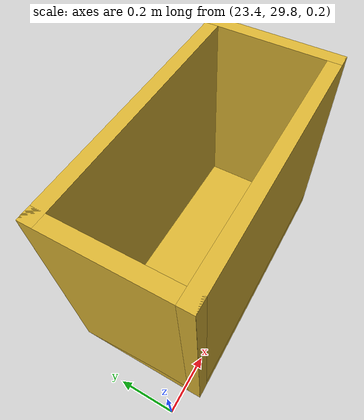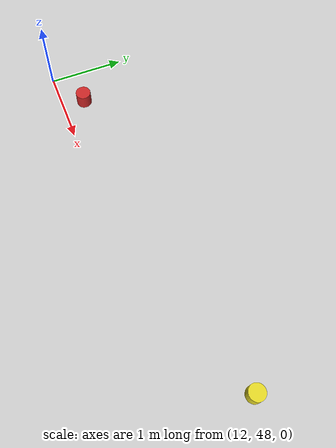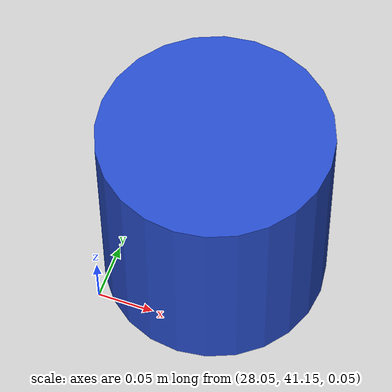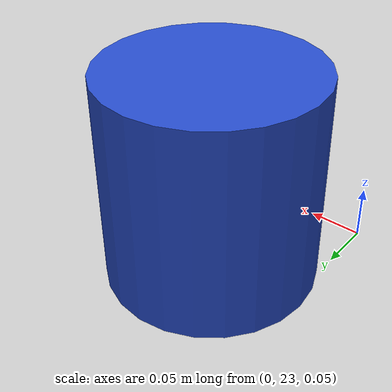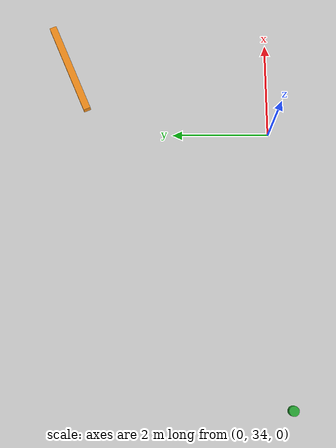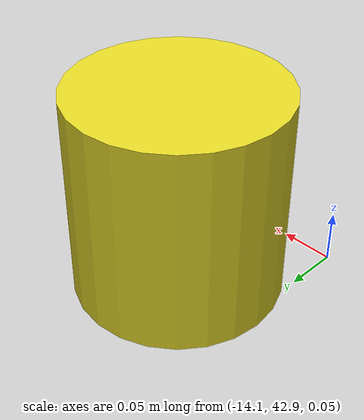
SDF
<sdf version="1.4">
 <world name="default">
  <include><uri>model://sun</uri></include>
  <include><uri>model://ground_plane</uri></include>
  <model name="static_object_1">
   <pose>22.52 15.2 0.05 0 0 0</pose>
   <include><uri>model://object_green_cylinder_mbzirc</uri></include>
  </model>
  <model name="static_object_2">
   <pose>-33.77 37.7 0.05 0 0 0</pose>
   <include><uri>model://object_green_cylinder_mbzirc</uri></include>
  </model>
  <model name="static_object_3">
   <pose>-16.82 11.22 0.05 0 0 0</pose>
   <include><uri>model://object_green_cylinder_mbzirc</uri></include>
  </model>
  <model name="static_object_4">
   <pose>-5.61 33.71 0.05 0 0 0</pose>
   <include><uri>model://object_green_cylinder_mbzirc</uri></include>
  </model>
  <model name="static_object_5">
   <pose>0.1 23.1 0.05 0 0 0</pose>
   <include><uri>model://object_blue_cylinder_mbzirc</uri></include>
  </model>
  <model name="static_object_6">
   <pose>-28.18 18.78 0.05 0 0 0</pose>
   <include><uri>model://object_blue_cylinder_mbzirc</uri></include>
  </model>
  <model name="static_object_7">
   <pose>28.13 41.23 0.05 0 0 0</pose>
   <include><uri>model://object_blue_cylinder_mbzirc</uri></include>
  </model>
  <model name="static_object_8">
   <pose>-36.57 28.17 0.05 0 0 0</pose>
   <include><uri>model://object_red_cylinder_mbzirc</uri></include>
  </model>
  <model name="static_object_9">
   <pose>11.26 7.6 0.05 0 0 0</pose>
   <include><uri>model://object_red_cylinder_mbzirc</uri></include>
  </model>
  <model name="static_object_10">
   <pose>12.53 48.3 0.05 0 0 0</pose>
   <include><uri>model://object_red_cylinder_mbzirc</uri></include>
  </model>
  <model name="big_object_1">
   <pose>1.48 38.18 0.05 0 0 0.39270</pose>
   <include><uri>model://object_big_mbzirc</uri></include>
  </model>
  <model name="big_object_2">
   <pose>39.30 13.70 0.05 0 0 1.76715</pose>
   <include><uri>model://object_big_mbzirc</uri></include>
  </model>
  <model name="big_object_3">
   <pose>-39.35 46.25 0.1 0 0 2.15985</pose>
   <include><uri>model://object_big_mbzirc</uri></include>
  </model>
  <model name="mobile_object_1">
   <pose>-1.24 8.7 0.05 0 0 0</pose>
   <include><uri>model://object_yellow_cylinder_mbzirc</uri></include>
  </model>
  <model name="mobile_object_2">
   <pose>16.89 48.79 0.05 0 0 0</pose>
   <include><uri>model://object_yellow_cylinder_mbzirc</uri></include>
  </model>
  <model name="mobile_object_3">
   <pose>5.64 26.24 0.05 0 0 0</pose>
   <include><uri>model://object_yellow_cylinder_mbzirc</uri></include>
  </model>
  <model name="mobile_object_4">
   <pose>33.75 52.5 0.05 0 0 0</pose>
   <include><uri>model://object_yellow_cylinder_mbzirc</uri></include>
  </model>
  <model name="mobile_object_5">
   <pose>32.9 33.19 0.05 0 0 0</pose>
   <include><uri>model://object_yellow_cylinder_mbzirc</uri></include>
  </model>
  <model name="mobile_object_6">
   <pose>-14.0 43.0 0.05 0 0 0</pose>
   <include><uri>model://object_yellow_cylinder_mbzirc</uri></include>
  </model>
  <model name="drop_box">
   <pose>24 30 0.05 0 0 1.571</pose>
   <include><uri>model://dropping_box</uri></include>
  </model>
 </world>
</sdf>

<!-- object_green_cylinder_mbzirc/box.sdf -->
<sdf version="1.4">
<model name="Green cylinder object">
  <pose>0 0 0.08 0 0 0</pose>
    <link name="grab_here">
      <inertial>
        <mass>0.5</mass>
        <inertia>
          <ixx>0.083</ixx>
          <ixy>0.0</ixy>
          <ixz>0.0</ixz>
          <iyy>0.083</iyy>
          <iyz>0.0</iyz>
          <izz>0.083</izz>
        </inertia>
      </inertial>
      <collision name="collision">
        <geometry>
          <cylinder>
            <radius>0.10</radius>
            <length>0.2</length>
          </cylinder>
        </geometry>
      </collision>
      <visual name="visual">
        <geometry>
          <cylinder>
            <radius>0.10</radius>
            <length>0.2</length>
          </cylinder>
        </geometry>
        <material>
        	<script>
              <uri>file://media/materials/scripts/gazebo.material</uri>
              <name>Gazebo/Green</name>
            </script>
        </material>
      </visual>
    </link>
  </model>
</sdf>

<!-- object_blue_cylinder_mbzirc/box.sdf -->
<sdf version="1.4">
<model name="Blue cylinder object">
  <pose>0 0 0.08 0 0 0</pose>
    <link name="grab_here">
      <inertial>
        <mass>0.5</mass>
        <inertia>
          <ixx>0.083</ixx>
          <ixy>0.0</ixy>
          <ixz>0.0</ixz>
          <iyy>0.083</iyy>
          <iyz>0.0</iyz>
          <izz>0.083</izz>
        </inertia>
      </inertial>
      <collision name="collision">
        <geometry>
          <cylinder>
            <radius>0.10</radius>
            <length>0.2</length>
          </cylinder>
        </geometry>
      </collision>
      <visual name="visual">
        <geometry>
          <cylinder>
            <radius>0.10</radius>
            <length>0.2</length>
          </cylinder>
        </geometry>
        <material>
        	<script>
              <uri>file://media/materials/scripts/gazebo.material</uri>
              <name>Gazebo/Blue</name>
            </script>
        </material>
      </visual>
    </link>
  </model>
</sdf>

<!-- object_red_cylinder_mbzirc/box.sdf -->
<sdf version="1.4">
<model name="Red cylinder object">
  <pose>0 0 0.08 0 0 0</pose>
    <link name="grab_here">
      <inertial>
        <mass>0.5</mass>
        <inertia>
          <ixx>0.083</ixx>
          <ixy>0.0</ixy>
          <ixz>0.0</ixz>
          <iyy>0.083</iyy>
          <iyz>0.0</iyz>
          <izz>0.083</izz>
        </inertia>
      </inertial>
      <collision name="collision">
        <geometry>
          <cylinder>
            <radius>0.10</radius>
            <length>0.2</length>
          </cylinder>
        </geometry>
      </collision>
      <visual name="visual">
        <geometry>
          <cylinder>
            <radius>0.10</radius>
            <length>0.2</length>
          </cylinder>
        </geometry>
        <material>
        	<script>
              <uri>file://media/materials/scripts/gazebo.material</uri>
              <name>Gazebo/Red</name>
            </script>
        </material>
      </visual>
    </link>
  </model>
</sdf>

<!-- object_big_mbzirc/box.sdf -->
<sdf version="1.4">
<model name="Big Object">
  <pose>0 0 0.04 0 0 0</pose>
    <link name="grab_here">
      <inertial>
        <mass>2</mass>
        <inertia>
          <ixx>0.083</ixx>
          <ixy>0.0</ixy>
          <ixz>0.0</ixz>
          <iyy>0.083</iyy>
          <iyz>0.0</iyz>
          <izz>0.083</izz>
        </inertia>
      </inertial>
      <collision name="collision">
        <geometry>
          <box>
            <size>2 0.2 0.2</size>
          </box>
        </geometry>
      </collision>
      <visual name="visual">
        <geometry>
          <box>
            <size>2 0.15 0.15</size>
          </box>
        </geometry>
        <material>
        	<script>
              <uri>file://media/materials/scripts/gazebo.material</uri>
              <name>Gazebo/Orange</name>
            </script>
        </material>
      </visual>
    </link>
  </model>
</sdf>

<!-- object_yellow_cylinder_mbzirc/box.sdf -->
<sdf version="1.4">
<model name="Yelow cylinder object">
  <pose>0 0 0.08 0 0 0</pose>
    <link name="grab_here">
      <inertial>
        <mass>0.5</mass>
        <inertia>
          <ixx>0.083</ixx>
          <ixy>0.0</ixy>
          <ixz>0.0</ixz>
          <iyy>0.083</iyy>
          <iyz>0.0</iyz>
          <izz>0.083</izz>
        </inertia>
      </inertial>
      <collision name="collision">
        <geometry>
          <cylinder>
            <radius>0.10</radius>
            <length>0.2</length>
          </cylinder>
        </geometry>
      </collision>
      <visual name="visual">
        <geometry>
          <cylinder>
            <radius>0.10</radius>
            <length>0.2</length>
          </cylinder>
        </geometry>
        <material>
        	<script>
              <uri>file://media/materials/scripts/gazebo.material</uri>
              <name>Gazebo/Yellow</name>
            </script>
        </material>
      </visual>
    </link>
  </model>
</sdf>

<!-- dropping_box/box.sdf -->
<sdf version="1.4">
<model name="Dropping_Box">
  <pose>0 0 0.08 0 0 0</pose>
  <static>true</static>
    <link name="base_face">
        <inertial>
         <mass>0.5</mass>
         <inertia>
            <ixx>0.083</ixx>
            <ixy>0.0</ixy>
            <ixz>0.0</ixz>
            <iyy>0.083</iyy>
            <iyz>0.0</iyz>
            <izz>0.083</izz>
         </inertia>
        </inertial>
        <collision name="collision">
            <geometry>
                <box>
                    <size>0.5 1 0.05</size>
                </box>
            </geometry>
        </collision>
        <visual name="visual">
            <geometry>
                <box>
                    <size>0.5 1 0.05</size>
                </box>
            </geometry>
            <material>
                <script>
                    <uri>file://media/materials/scripts/gazebo.material</uri>
                    <name>Gazebo/Gold</name>
                </script>
            </material>
        </visual>
    </link>

    <link name="front_face">
      <pose>0.225 0 0.375 0 0 0</pose>
      <inertial>
        <mass>0.5</mass>
        <inertia>
          <ixx>0.083</ixx>
          <ixy>0.0</ixy>
          <ixz>0.0</ixz>
          <iyy>0.083</iyy>
          <iyz>0.0</iyz>
          <izz>0.083</izz>
        </inertia>
      </inertial>
      <collision name="collision">
        <geometry>
        <box>
          <size>0.05 1 0.8</size>
        </box>
        </geometry>
      </collision>
      <visual name="visual">
        <geometry>
        <box>
          <size>0.05 1 0.8</size>
        </box>
        </geometry>
        <material>
            <script>
              <uri>file://media/materials/scripts/gazebo.material</uri>
              <name>Gazebo/Gold</name>
            </script>
        </material>
      </visual>
    </link>

    <link name="rear_face">
      <pose>-0.225 0 0.375 0 0 0</pose>
      <inertial>
        <mass>0.5</mass>
        <inertia>
          <ixx>0.083</ixx>
          <ixy>0.0</ixy>
          <ixz>0.0</ixz>
          <iyy>0.083</iyy>
          <iyz>0.0</iyz>
          <izz>0.083</izz>
        </inertia>
      </inertial>
      <collision name="collision">
        <geometry>
        <box>
          <size>0.05 1 0.8</size>
        </box>
        </geometry>
      </collision>
      <visual name="visual">
        <geometry>
        <box>
          <size>0.05 1 0.8</size>
        </box>
        </geometry>
        <material>
            <script>
              <uri>file://media/materials/scripts/gazebo.material</uri>
              <name>Gazebo/Gold</name>
            </script>
        </material>
      </visual>
    </link>

    <link name="right_face">
      <pose>0 0.475 0.375 0 0 0</pose>
      <inertial>
        <mass>0.5</mass>
        <inertia>
          <ixx>0.083</ixx>
          <ixy>0.0</ixy>
          <ixz>0.0</ixz>
          <iyy>0.083</iyy>
          <iyz>0.0</iyz>
          <izz>0.083</izz>
        </inertia>
      </inertial>
      <collision name="collision">
        <geometry>
        <box>
          <size>0.5 0.05 0.8</size>
        </box>
        </geometry>
      </collision>
      <visual name="visual">
        <geometry>
        <box>
          <size>0.5 0.05 0.8</size>
        </box>
        </geometry>
        <material>
            <script>
              <uri>file://media/materials/scripts/gazebo.material</uri>
              <name>Gazebo/Gold</name>
            </script>
        </material>
      </visual>
    </link>

    <link name="left_face">
      <pose>0 -0.475 0.375 0 0 0</pose>
      <inertial>
        <mass>0.5</mass>
        <inertia>
          <ixx>0.083</ixx>
          <ixy>0.0</ixy>
          <ixz>0.0</ixz>
          <iyy>0.083</iyy>
          <iyz>0.0</iyz>
          <izz>0.083</izz>
        </inertia>
      </inertial>
      <collision name="collision">
        <geometry>
        <box>
          <size>0.5 0.05 0.8</size>
        </box>
        </geometry>
      </collision>
      <visual name="visual">
        <geometry>
        <box>
          <size>0.5 0.05 0.8</size>
        </box>
        </geometry>
        <material>
            <script>
              <uri>file://media/materials/scripts/gazebo.material</uri>
              <name>Gazebo/Gold</name>
            </script>
        </material>
      </visual>
    </link>

    <joint name="base_front" type="revolute">
        <child>front_face</child>
        <parent>base_face</parent>
        <pose>1 1 1 0 0 0</pose>
        <axis>
          <xyz>1 1 1</xyz>
        </axis>
    </joint>

    <joint name="base_rear" type="revolute">
        <child>rear_face</child>
        <parent>base_face</parent>
        <pose>1 1 1 0 0 0</pose>
        <axis>
          <xyz>1 1 1</xyz>
        </axis>
    </joint>

    <joint name="base_right" type="revolute">
        <child>right_face</child>
        <parent>base_face</parent>
        <pose>1 1 1 0 0 0</pose>
        <axis>
          <xyz>1 1 1</xyz>
        </axis>
    </joint>

    <joint name="base_left" type="revolute">
        <child>left_face</child>
        <parent>base_face</parent>
        <pose>1 1 1 0 0 0</pose>
        <axis>
          <xyz>1 1 1</xyz>
        </axis>
    </joint>

  </model>
</sdf>
